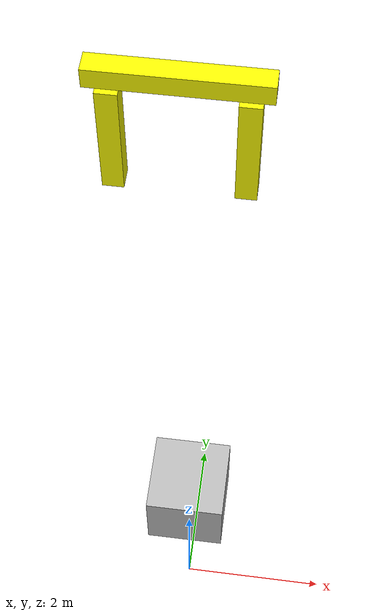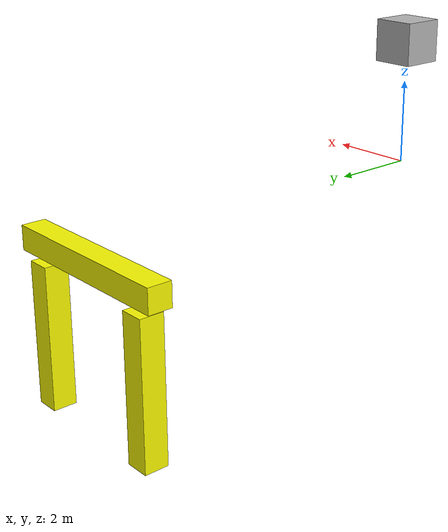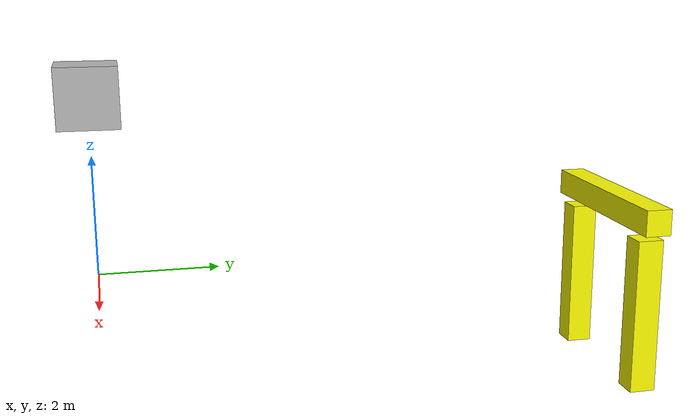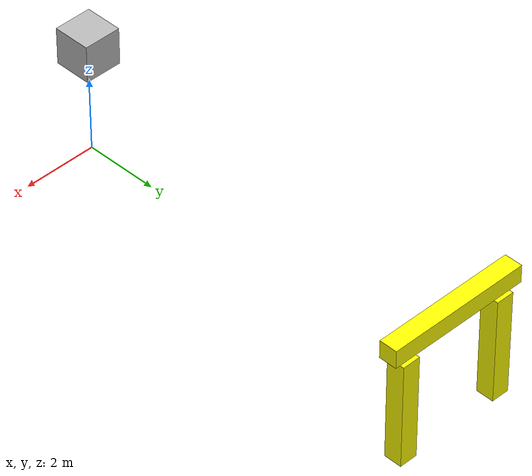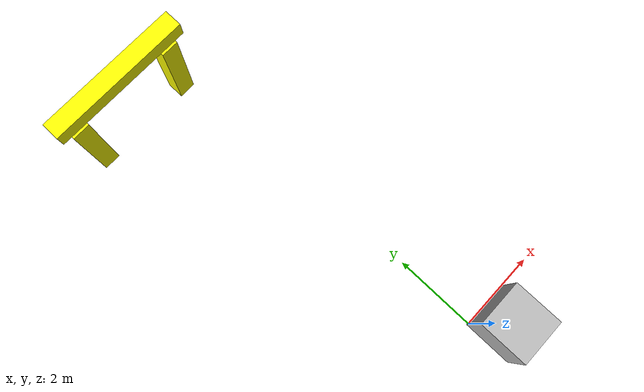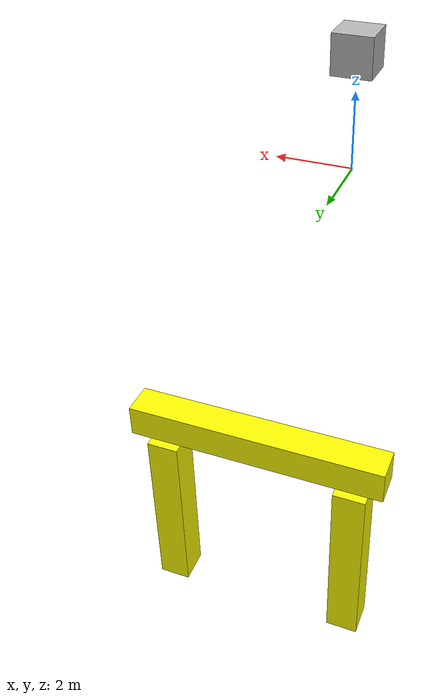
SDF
<?xml version="1.0"?>
<sdf version="1.4">
  <world name="default">

    <include>
      <uri>model://sun</uri>
    </include>

    <model name="gate">
      <pose>0 10 -3 0 0 1.5707</pose>

      <link name="left_pole">
        <pose>0 0 1.5 0 0 0</pose>
        <gravity>0</gravity>
        <collision name="collision">
          <geometry>
            <box>
              <size>0.5 0.5 3</size>
            </box>
          </geometry>
          <surface>
            <contact>
              <collide_bitmask>0x11</collide_bitmask>
            </contact>
          </surface>
        </collision>

        <visual name="visual">
          <material>
            <diffuse>1 1 0 1</diffuse>
            <ambient>1 1 0 1</ambient>
            <specular>1 1 0 1</specular>
          </material>
          <geometry>
            <box>
              <size>0.5 0.5 3</size>
            </box>
          </geometry>
        </visual>
      </link>

      <link name="right_pole">
        <pose>0 3 1.5 0 0 0</pose>
        <gravity>0</gravity>
        <collision name="collision">
          <geometry>
            <box>
              <size>0.5 0.5 3</size>
            </box>
          </geometry>
          <surface>
            <contact>
              <collide_bitmask>0x11</collide_bitmask>
            </contact>
          </surface>
        </collision>

        <visual name="visual">
          <material>
            <diffuse>1 1 0 1</diffuse>
            <ambient>1 1 0 1</ambient>
            <specular>1 1 0 1</specular>
          </material>
          <geometry>
            <box>
              <size>0.5 0.5 3</size>
            </box>
          </geometry>
        </visual>
      </link>

      <link name="top_pole">
        <pose>0 1.5 3.4 0 0 0</pose>
        <gravity>0</gravity>
        <collision name="collision">
          <geometry>
            <box>
              <size>0.5 4 0.5</size>
            </box>
          </geometry>
          <surface>
            <contact>
              <collide_bitmask>0x11</collide_bitmask>
            </contact>
          </surface>
        </collision>

        <visual name="visual">
          <material>
            <diffuse>1 1 0 1</diffuse>
            <ambient>1 1 0 1</ambient>
            <specular>1 1 0 1</specular>
          </material>
          <geometry>
            <box>
              <size>0.5 4 0.5</size>
            </box>
          </geometry>
        </visual>
      </link>
    </model>

    <model name="seawolf8">
      <pose>0 0 3 0 0 0</pose>

      <link name="base_link">
        <gravity>0</gravity>
        <collision name="collision">
          <geometry>
            <box>
              <size>1 1 1</size>
            </box>
          </geometry>
          <surface>
            <contact>
              <collide_bitmask>0x11</collide_bitmask>
            </contact>
          </surface>
        </collision>

        <visual name="visual">
          <geometry>
            <box>
              <size>1 1 1</size>
            </box>
          </geometry>
        </visual>
      </link>

      <link name="camera_link">
        <pose>0.0 0.5 0 0 0 1.5707</pose>
        <sensor name='camera1' type='camera'>
          <camera name="head">
            <horizontal_fov>1.3962634</horizontal_fov>
            <image>
              <width>640</width>
              <height>480</height>
              <format>R8G8B8</format>
            </image>
            <clip>
              <near>0.02</near>
              <far>300</far>
            </clip>
          </camera>

          <always_on>1</always_on>
          <update_rate>30</update_rate>
          <visualize>1</visualize>
          <plugin name="camera_controller" filename="libgazebo_ros_camera.so">
            <alwaysOn>true</alwaysOn>
            <updateRate>0.0</updateRate>
            <cameraName>wolf_camera1</cameraName>
            <imageTopicName>image_raw</imageTopicName>
            <cameraInfoTopicName>camera_info</cameraInfoTopicName>
            <frameName>camera_link</frameName>
            <hackBaseline>0.07</hackBaseline>
            <distortionK1>0.0</distortionK1>
            <distortionK2>0.0</distortionK2>
            <distortionK3>0.0</distortionK3>
            <distortionT1>0.0</distortionT1>
            <distortionT2>0.0</distortionT2>
          </plugin>
        </sensor>

      </link>

      <joint name="camera2frame" type="fixed">
        <parent>base_link</parent>
        <child>camera_link</child>
        <pose>0 0.0 0 0 0 0</pose>
        <axis>
          <xyz>1 1 1</xyz>
        </axis>
      </joint>

      <plugin name="seawolf_model_control" filename="libseawolf_model_control.so" />
    </model>

  </world>
</sdf>
